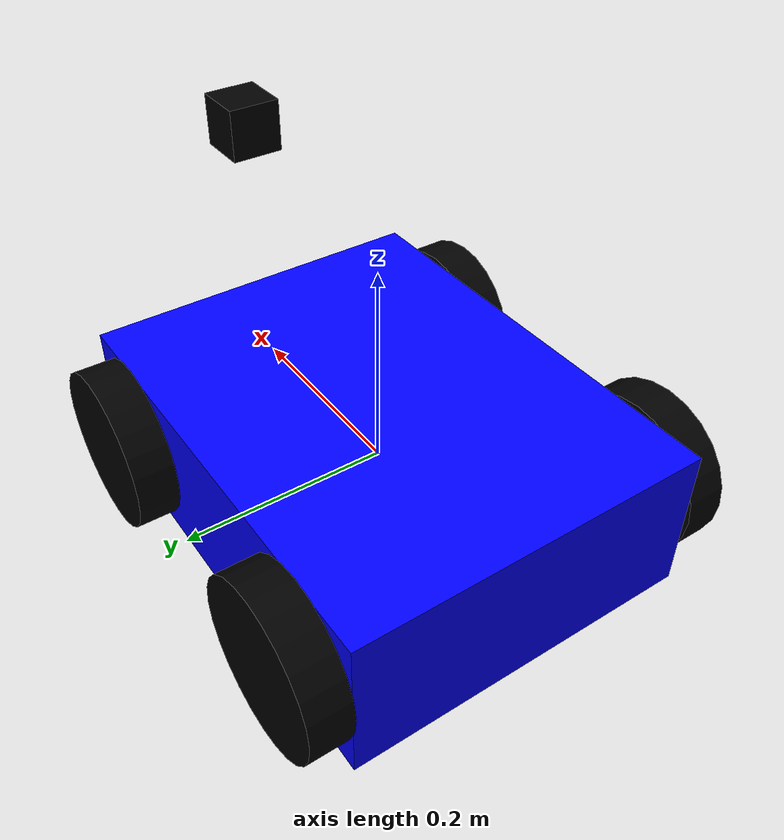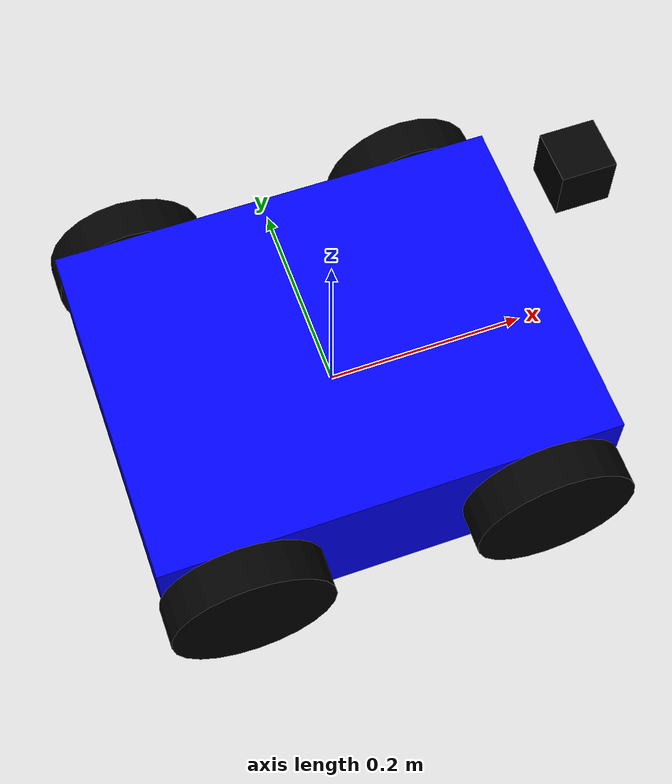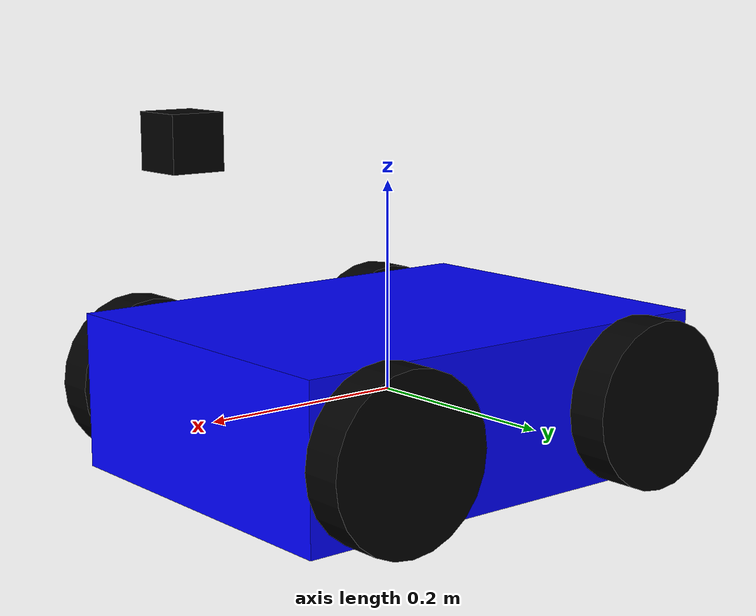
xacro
<?xml version="1.0"?>
<robot name="follower_robot" xmlns:xacro="http://www.ros.org/wiki/xacro">
    <!-- Property definitions -->
    <xacro:property name="base_width" value="0.35"/>
    <xacro:property name="base_length" value="0.45"/>
    <xacro:property name="base_height" value="0.15"/>
    <xacro:property name="wheel_radius" value="0.08"/>
    <xacro:property name="wheel_width" value="0.04"/>
    <xacro:property name="wheel_separation_length" value="0.30"/>

    <!-- Base link -->
    <link name="base_link">
        <visual>
            <geometry>
                <box size="${base_length} ${base_width} ${base_height}"/>
            </geometry>
            <material name="blue">
                <color rgba="0 0 1 1"/>
            </material>
        </visual>
        <collision>
            <geometry>
                <box size="${base_length} ${base_width} ${base_height}"/>
            </geometry>
        </collision>
        <inertial>
            <mass value="5.0"/>
            <inertia ixx="0.1" ixy="0" ixz="0" iyy="0.1" iyz="0" izz="0.1"/>
        </inertial>
    </link>

    <!-- Wheel Macro -->
    <xacro:macro name="wheel" params="prefix suffix x_reflect y_reflect">
        <link name="${prefix}_${suffix}_wheel">
            <visual>
                <geometry>
                    <cylinder radius="${wheel_radius}" length="${wheel_width}"/>
                </geometry>
                <material name="black">
                    <color rgba="0 0 0 1"/>
                </material>
            </visual>
            <collision>
                <geometry>
                    <cylinder radius="${wheel_radius}" length="${wheel_width}"/>
                </geometry>
            </collision>
            <inertial>
                <mass value="0.5"/>
                <inertia ixx="0.01" ixy="0" ixz="0" iyy="0.01" iyz="0" izz="0.01"/>
            </inertial>
        </link>

        <joint name="${prefix}_${suffix}_wheel_joint" type="continuous">
            <parent link="base_link"/>
            <child link="${prefix}_${suffix}_wheel"/>
            <origin xyz="${x_reflect*wheel_separation_length/2} ${y_reflect*(base_width/2 + wheel_width/2)} 0" rpy="${pi/2} 0 0"/>
            <axis xyz="0 0 1"/>
        </joint>

        <gazebo reference="${prefix}_${suffix}_wheel">
            <material>Gazebo/Black</material>
            <mu1>1.0</mu1>
            <mu2>1.0</mu2>
        </gazebo>
    </xacro:macro>

    <!-- Create wheels -->
    <xacro:wheel prefix="front" suffix="left"  x_reflect="1" y_reflect="1" />
    <xacro:wheel prefix="front" suffix="right" x_reflect="1" y_reflect="-1" />
    <xacro:wheel prefix="rear"  suffix="left"  x_reflect="-1" y_reflect="1" />
    <xacro:wheel prefix="rear"  suffix="right" x_reflect="-1" y_reflect="-1" />

    <!-- Camera link -->
    <link name="camera_link">
        <visual>
            <geometry>
                <box size="0.05 0.05 0.05"/>
            </geometry>
            <material name="black">
                <color rgba="0 0 0 1"/>
            </material>
        </visual>
    </link>

    <!-- Camera joint -->
    <joint name="camera_joint" type="fixed">
        <parent link="base_link"/>
        <child link="camera_link"/>
        <origin xyz="${base_length/2} 0 ${base_height + 0.1}" rpy="0 0 0"/>
    </joint>

    <!-- Gazebo materials -->
    <gazebo reference="base_link">
        <material>Gazebo/Blue</material>
        <mu1>0.2</mu1>
        <mu2>0.2</mu2>
    </gazebo>

    <!-- Gazebo plugin -->
    <gazebo>
        <plugin name="differential_drive_controller" filename="libgazebo_ros_diff_drive.so">
            <!-- Left -->
            <leftJoint>front_left_wheel_joint</leftJoint>
            <leftJoint>rear_left_wheel_joint</leftJoint>
            <!-- Right -->
            <rightJoint>front_right_wheel_joint</rightJoint>
            <rightJoint>rear_right_wheel_joint</rightJoint>

            <wheelSeparation>${base_width}</wheelSeparation>
            <wheelDiameter>${2*wheel_radius}</wheelDiameter>
            <robotBaseFrame>base_link</robotBaseFrame>
            <commandTopic>cmd_vel</commandTopic>
            <odometryTopic>odom</odometryTopic>
            <odometryFrame>odom</odometryFrame>
            <robotNamespace>/</robotNamespace>
            <publishWheelTF>true</publishWheelTF>
            <publishWheelJointState>true</publishWheelJointState>
            <publishOdomTF>true</publishOdomTF>
            <odometrySource>world</odometrySource>
            <updateRate>50.0</updateRate>
            <wheelAcceleration>1.0</wheelAcceleration>
            <wheelTorque>20.0</wheelTorque>
            <rosDebugLevel>Debug</rosDebugLevel>
            <legacyMode>false</legacyMode>
        </plugin>
    </gazebo>

    <!-- Camera Gazebo plugin -->
    <gazebo reference="camera_link">
        <sensor type="camera" name="rgb_camera">
            <update_rate>30.0</update_rate>
            <camera name="head">
                <horizontal_fov>1.3962634</horizontal_fov>
                <image>
                    <width>800</width>
                    <height>600</height>
                    <format>R8G8B8</format>
                </image>
                <clip>
                    <near>0.02</near>
                    <far>300</far>
                </clip>
                <noise>
                    <type>gaussian</type>
                    <mean>0.0</mean>
                    <stddev>0.007</stddev>
                </noise>
            </camera>
            <plugin name="camera_controller" filename="libgazebo_ros_camera.so">
                <alwaysOn>true</alwaysOn>
                <updateRate>0.0</updateRate>
                <cameraName>follower/camera</cameraName>
                <imageTopicName>rgb/image_raw</imageTopicName>
                <cameraInfoTopicName>rgb/camera_info</cameraInfoTopicName>
                <frameName>camera_link</frameName>
                <hackBaseline>0.07</hackBaseline>
                <distortionK1>0.0</distortionK1>
                <distortionK2>0.0</distortionK2>
                <distortionK3>0.0</distortionK3>
                <distortionT1>0.0</distortionT1>
                <distortionT2>0.0</distortionT2>
            </plugin>
        </sensor>
    </gazebo>

    <!-- Depth Camera Gazebo plugin -->
    <gazebo reference="camera_link">
        <sensor type="depth" name="depth_camera">
            <update_rate>30.0</update_rate>
            <camera name="depth_head">
                <horizontal_fov>1.3962634</horizontal_fov>
                <image>
                    <width>800</width>
                    <height>600</height>
                    <format>L8</format>
                </image>
                <clip>
                    <near>0.02</near>
                    <far>300</far>
                </clip>
                <noise>
                    <type>gaussian</type>
                    <mean>0.0</mean>
                    <stddev>0.007</stddev>
                </noise>
            </camera>
            <plugin name="depth_camera_controller" filename="libgazebo_ros_openni_kinect.so">
                <alwaysOn>true</alwaysOn>
                <updateRate>30.0</updateRate>
                <cameraName>follower/camera</cameraName>
                <imageTopicName>depth/image_raw</imageTopicName>
                <cameraInfoTopicName>depth/camera_info</cameraInfoTopicName>
                <depthImageTopicName>depth/image_raw</depthImageTopicName>
                <depthImageInfoTopicName>depth/camera_info</depthImageInfoTopicName>
                <pointCloudTopicName>depth/points</pointCloudTopicName>
                <frameName>camera_link</frameName>
                <pointCloudCutoff>0.5</pointCloudCutoff>
                <pointCloudCutoffMax>5.0</pointCloudCutoffMax>
                <rangeMax>5.0</rangeMax>
                <rangeMin>0.05</rangeMin>
                <distortionK1>0.0</distortionK1>
                <distortionK2>0.0</distortionK2>
                <distortionK3>0.0</distortionK3>
                <distortionT1>0.0</distortionT1>
                <distortionT2>0.0</distortionT2>
            </plugin>
        </sensor>
    </gazebo>
</robot>
